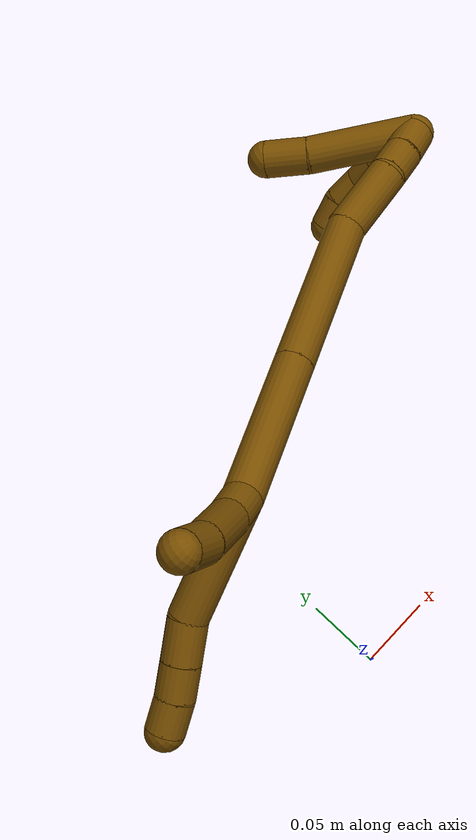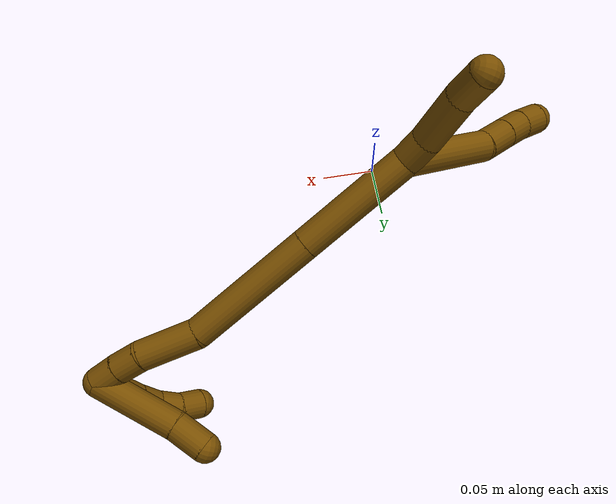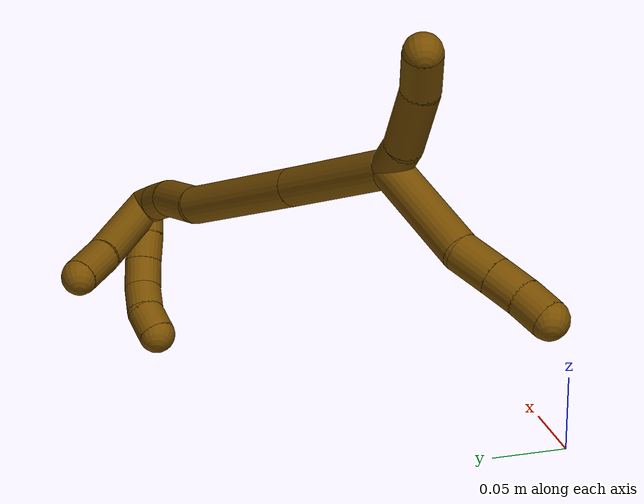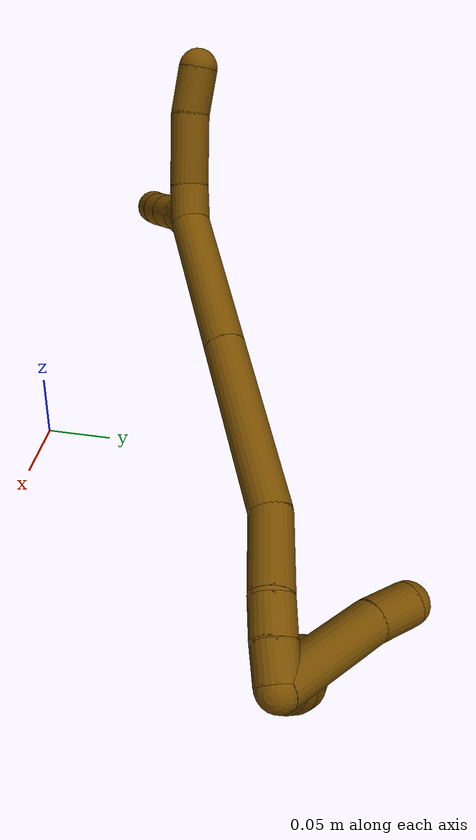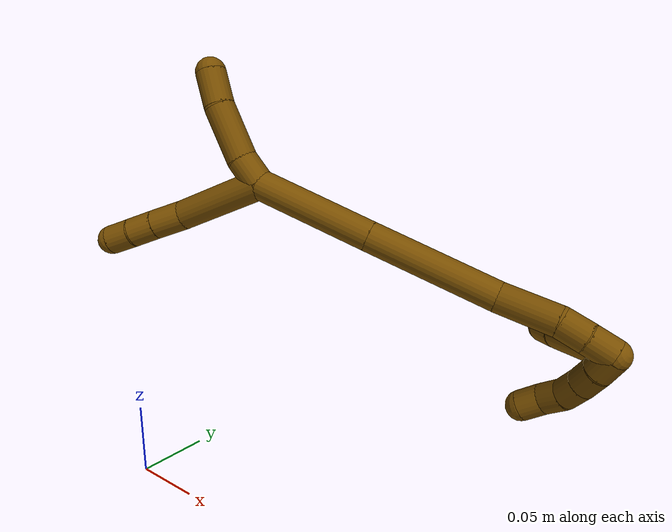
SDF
<sdf version="1.7">
 <world name="default">
  <model name="12">
   <static>0</static>
   <link name="12">
    <collision name="collision-cylinder-e_1_2_8">
     <pose>-0.018758 -0.000157 -0.034801 3.13707 -0.494367 -3.12367</pose>
     <geometry><cylinder><radius>0.0125</radius><length>0.079069</length></cylinder></geometry>
     <surface>
      <friction><ode><mu>1.16</mu><mu2>1.16</mu2><slip1>0</slip1><slip2>0</slip2></ode></friction>
      <contact><ode><kp>1e+06</kp><kd>1</kd><max_vel>0</max_vel><min_depth>0.001</min_depth></ode></contact>
     </surface>
    </collision>
    <visual name="visual-cylinder-e_1_2_8">
     <pose>-0.018758 -0.000157 -0.034801 3.13707 -0.494367 -3.12367</pose>
     <geometry><cylinder><radius>0.0125</radius><length>0.079069</length></cylinder></geometry>
     <material><ambient>0.466667 0.301961 0 1</ambient></material>
    </visual>
    <collision name="collision-cylinder-e_2_8_9">
     <pose>-0.046786 -0.001173 -0.079534 3.05537 -0.749034 -2.92298</pose>
     <geometry><cylinder><radius>0.0125</radius><length>0.027226</length></cylinder></geometry>
     <surface>
      <friction><ode><mu>1.16</mu><mu2>1.16</mu2><slip1>0</slip1><slip2>0</slip2></ode></friction>
      <contact><ode><kp>1e+06</kp><kd>1</kd><max_vel>0</max_vel><min_depth>0.001</min_depth></ode></contact>
     </surface>
    </collision>
    <visual name="visual-cylinder-e_2_8_9">
     <pose>-0.046786 -0.001173 -0.079534 3.05537 -0.749034 -2.92298</pose>
     <geometry><cylinder><radius>0.0125</radius><length>0.027226</length></cylinder></geometry>
     <material><ambient>0.466667 0.301961 0 1</ambient></material>
    </visual>
    <collision name="collision-cylinder-e_3_9_10">
     <pose>-0.063502 -0.00284 -0.097656 3.04323 -0.735458 -2.88744</pose>
     <geometry><cylinder><radius>0.0125</radius><length>0.022197</length></cylinder></geometry>
     <surface>
      <friction><ode><mu>1.16</mu><mu2>1.16</mu2><slip1>0</slip1><slip2>0</slip2></ode></friction>
      <contact><ode><kp>1e+06</kp><kd>1</kd><max_vel>0</max_vel><min_depth>0.001</min_depth></ode></contact>
     </surface>
    </collision>
    <visual name="visual-cylinder-e_3_9_10">
     <pose>-0.063502 -0.00284 -0.097656 3.04323 -0.735458 -2.88744</pose>
     <geometry><cylinder><radius>0.0125</radius><length>0.022197</length></cylinder></geometry>
     <material><ambient>0.466667 0.301961 0 1</ambient></material>
    </visual>
    <collision name="collision-cylinder-e_4_10_6">
     <pose>-0.077317 -0.003847 -0.114509 3.11866 -0.633855 -3.07171</pose>
     <geometry><cylinder><radius>0.0125</radius><length>0.021508</length></cylinder></geometry>
     <surface>
      <friction><ode><mu>1.16</mu><mu2>1.16</mu2><slip1>0</slip1><slip2>0</slip2></ode></friction>
      <contact><ode><kp>1e+06</kp><kd>1</kd><max_vel>0</max_vel><min_depth>0.001</min_depth></ode></contact>
     </surface>
    </collision>
    <visual name="visual-cylinder-e_4_10_6">
     <pose>-0.077317 -0.003847 -0.114509 3.11866 -0.633855 -3.07171</pose>
     <geometry><cylinder><radius>0.0125</radius><length>0.021508</length></cylinder></geometry>
     <material><ambient>0.466667 0.301961 0 1</ambient></material>
    </visual>
    <collision name="collision-cylinder-e_1_2_11">
     <pose>-0.005122 0.010972 -0.001403 -1.69797 -0.433677 0.490456</pose>
     <geometry><cylinder><radius>0.0125</radius><length>0.02438</length></cylinder></geometry>
     <surface>
      <friction><ode><mu>1.16</mu><mu2>1.16</mu2><slip1>0</slip1><slip2>0</slip2></ode></friction>
      <contact><ode><kp>1e+06</kp><kd>1</kd><max_vel>0</max_vel><min_depth>0.001</min_depth></ode></contact>
     </surface>
    </collision>
    <visual name="visual-cylinder-e_1_2_11">
     <pose>-0.005122 0.010972 -0.001403 -1.69797 -0.433677 0.490456</pose>
     <geometry><cylinder><radius>0.0125</radius><length>0.02438</length></cylinder></geometry>
     <material><ambient>0.466667 0.301961 0 1</ambient></material>
    </visual>
    <collision name="collision-cylinder-e_2_11_12">
     <pose>-0.017343 0.04394 -0.001095 -1.49317 -0.311295 0.288356</pose>
     <geometry><cylinder><radius>0.0125</radius><length>0.046351</length></cylinder></geometry>
     <surface>
      <friction><ode><mu>1.16</mu><mu2>1.16</mu2><slip1>0</slip1><slip2>0</slip2></ode></friction>
      <contact><ode><kp>1e+06</kp><kd>1</kd><max_vel>0</max_vel><min_depth>0.001</min_depth></ode></contact>
     </surface>
    </collision>
    <visual name="visual-cylinder-e_2_11_12">
     <pose>-0.017343 0.04394 -0.001095 -1.49317 -0.311295 0.288356</pose>
     <geometry><cylinder><radius>0.0125</radius><length>0.046351</length></cylinder></geometry>
     <material><ambient>0.466667 0.301961 0 1</ambient></material>
    </visual>
    <collision name="collision-cylinder-e_3_12_5">
     <pose>-0.026392 0.080392 0.001781 -1.49036 -0.133645 0.123332</pose>
     <geometry><cylinder><radius>0.0125</radius><length>0.029268</length></cylinder></geometry>
     <surface>
      <friction><ode><mu>1.16</mu><mu2>1.16</mu2><slip1>0</slip1><slip2>0</slip2></ode></friction>
      <contact><ode><kp>1e+06</kp><kd>1</kd><max_vel>0</max_vel><min_depth>0.001</min_depth></ode></contact>
     </surface>
    </collision>
    <visual name="visual-cylinder-e_3_12_5">
     <pose>-0.026392 0.080392 0.001781 -1.49036 -0.133645 0.123332</pose>
     <geometry><cylinder><radius>0.0125</radius><length>0.029268</length></cylinder></geometry>
     <material><ambient>0.466667 0.301961 0 1</ambient></material>
    </visual>
    <collision name="collision-cylinder-e_1_2_13">
     <pose>0.031836 -0.029927 0.022113 0.934444 0.707718 0.368488</pose>
     <geometry><cylinder><radius>0.0125</radius><length>0.097942</length></cylinder></geometry>
     <surface>
      <friction><ode><mu>1.16</mu><mu2>1.16</mu2><slip1>0</slip1><slip2>0</slip2></ode></friction>
      <contact><ode><kp>1e+06</kp><kd>1</kd><max_vel>0</max_vel><min_depth>0.001</min_depth></ode></contact>
     </surface>
    </collision>
    <visual name="visual-cylinder-e_1_2_13">
     <pose>0.031836 -0.029927 0.022113 0.934444 0.707718 0.368488</pose>
     <geometry><cylinder><radius>0.0125</radius><length>0.097942</length></cylinder></geometry>
     <material><ambient>0.466667 0.301961 0 1</ambient></material>
    </visual>
    <collision name="collision-cylinder-e_2_13_14">
     <pose>0.099283 -0.093119 0.069127 0.92821 0.708549 0.366157</pose>
     <geometry><cylinder><radius>0.0125</radius><length>0.109446</length></cylinder></geometry>
     <surface>
      <friction><ode><mu>1.16</mu><mu2>1.16</mu2><slip1>0</slip1><slip2>0</slip2></ode></friction>
      <contact><ode><kp>1e+06</kp><kd>1</kd><max_vel>0</max_vel><min_depth>0.001</min_depth></ode></contact>
     </surface>
    </collision>
    <visual name="visual-cylinder-e_2_13_14">
     <pose>0.099283 -0.093119 0.069127 0.92821 0.708549 0.366157</pose>
     <geometry><cylinder><radius>0.0125</radius><length>0.109446</length></cylinder></geometry>
     <material><ambient>0.466667 0.301961 0 1</ambient></material>
    </visual>
    <collision name="collision-cylinder-e_3_14_15">
     <pose>0.145646 -0.140888 0.110587 0.719357 0.454383 0.17343</pose>
     <geometry><cylinder><radius>0.0125</radius><length>0.049</length></cylinder></geometry>
     <surface>
      <friction><ode><mu>1.16</mu><mu2>1.16</mu2><slip1>0</slip1><slip2>0</slip2></ode></friction>
      <contact><ode><kp>1e+06</kp><kd>1</kd><max_vel>0</max_vel><min_depth>0.001</min_depth></ode></contact>
     </surface>
    </collision>
    <visual name="visual-cylinder-e_3_14_15">
     <pose>0.145646 -0.140888 0.110587 0.719357 0.454383 0.17343</pose>
     <geometry><cylinder><radius>0.0125</radius><length>0.049</length></cylinder></geometry>
     <material><ambient>0.466667 0.301961 0 1</ambient></material>
    </visual>
    <collision name="collision-cylinder-e_4_15_16">
     <pose>0.161691 -0.163277 0.132775 0.950731 0.499951 0.261342</pose>
     <geometry><cylinder><radius>0.0125</radius><length>0.022077</length></cylinder></geometry>
     <surface>
      <friction><ode><mu>1.16</mu><mu2>1.16</mu2><slip1>0</slip1><slip2>0</slip2></ode></friction>
      <contact><ode><kp>1e+06</kp><kd>1</kd><max_vel>0</max_vel><min_depth>0.001</min_depth></ode></contact>
     </surface>
    </collision>
    <visual name="visual-cylinder-e_4_15_16">
     <pose>0.161691 -0.163277 0.132775 0.950731 0.499951 0.261342</pose>
     <geometry><cylinder><radius>0.0125</radius><length>0.022077</length></cylinder></geometry>
     <material><ambient>0.466667 0.301961 0 1</ambient></material>
    </visual>
    <collision name="collision-cylinder-e_5_16_1">
     <pose>0.172684 -0.178883 0.143284 1.00728 0.558019 0.313141</pose>
     <geometry><cylinder><radius>0.0125</radius><length>0.021535</length></cylinder></geometry>
     <surface>
      <friction><ode><mu>1.16</mu><mu2>1.16</mu2><slip1>0</slip1><slip2>0</slip2></ode></friction>
      <contact><ode><kp>1e+06</kp><kd>1</kd><max_vel>0</max_vel><min_depth>0.001</min_depth></ode></contact>
     </surface>
    </collision>
    <visual name="visual-cylinder-e_5_16_1">
     <pose>0.172684 -0.178883 0.143284 1.00728 0.558019 0.313141</pose>
     <geometry><cylinder><radius>0.0125</radius><length>0.021535</length></cylinder></geometry>
     <material><ambient>0.466667 0.301961 0 1</ambient></material>
    </visual>
    <collision name="collision-cylinder-e_1_1_17">
     <pose>0.178992 -0.190876 0.139141 2.6994 0.060713 0.26857</pose>
     <geometry><cylinder><radius>0.0125</radius><length>0.02</length></cylinder></geometry>
     <surface>
      <friction><ode><mu>1.16</mu><mu2>1.16</mu2><slip1>0</slip1><slip2>0</slip2></ode></friction>
      <contact><ode><kp>1e+06</kp><kd>1</kd><max_vel>0</max_vel><min_depth>0.001</min_depth></ode></contact>
     </surface>
    </collision>
    <visual name="visual-cylinder-e_1_1_17">
     <pose>0.178992 -0.190876 0.139141 2.6994 0.060713 0.26857</pose>
     <geometry><cylinder><radius>0.0125</radius><length>0.02</length></cylinder></geometry>
     <material><ambient>0.466667 0.301961 0 1</ambient></material>
    </visual>
    <collision name="collision-cylinder-e_2_17_18">
     <pose>0.181003 -0.198602 0.120841 2.78513 0.140915 0.746786</pose>
     <geometry><cylinder><radius>0.0125</radius><length>0.02</length></cylinder></geometry>
     <surface>
      <friction><ode><mu>1.16</mu><mu2>1.16</mu2><slip1>0</slip1><slip2>0</slip2></ode></friction>
      <contact><ode><kp>1e+06</kp><kd>1</kd><max_vel>0</max_vel><min_depth>0.001</min_depth></ode></contact>
     </surface>
    </collision>
    <visual name="visual-cylinder-e_2_17_18">
     <pose>0.181003 -0.198602 0.120841 2.78513 0.140915 0.746786</pose>
     <geometry><cylinder><radius>0.0125</radius><length>0.02</length></cylinder></geometry>
     <material><ambient>0.466667 0.301961 0 1</ambient></material>
    </visual>
    <collision name="collision-cylinder-e_3_18_19">
     <pose>0.183119 -0.204881 0.101996 2.85454 0.071217 0.483346</pose>
     <geometry><cylinder><radius>0.0125</radius><length>0.02</length></cylinder></geometry>
     <surface>
      <friction><ode><mu>1.16</mu><mu2>1.16</mu2><slip1>0</slip1><slip2>0</slip2></ode></friction>
      <contact><ode><kp>1e+06</kp><kd>1</kd><max_vel>0</max_vel><min_depth>0.001</min_depth></ode></contact>
     </surface>
    </collision>
    <visual name="visual-cylinder-e_3_18_19">
     <pose>0.183119 -0.204881 0.101996 2.85454 0.071217 0.483346</pose>
     <geometry><cylinder><radius>0.0125</radius><length>0.02</length></cylinder></geometry>
     <material><ambient>0.466667 0.301961 0 1</ambient></material>
    </visual>
    <collision name="collision-cylinder-e_4_19_20">
     <pose>0.183014 -0.208023 0.082468 3.10974 -0.081822 -2.39936</pose>
     <geometry><cylinder><radius>0.0125</radius><length>0.02</length></cylinder></geometry>
     <surface>
      <friction><ode><mu>1.16</mu><mu2>1.16</mu2><slip1>0</slip1><slip2>0</slip2></ode></friction>
      <contact><ode><kp>1e+06</kp><kd>1</kd><max_vel>0</max_vel><min_depth>0.001</min_depth></ode></contact>
     </surface>
    </collision>
    <visual name="visual-cylinder-e_4_19_20">
     <pose>0.183014 -0.208023 0.082468 3.10974 -0.081822 -2.39936</pose>
     <geometry><cylinder><radius>0.0125</radius><length>0.02</length></cylinder></geometry>
     <material><ambient>0.466667 0.301961 0 1</ambient></material>
    </visual>
    <collision name="collision-cylinder-e_5_20_4">
     <pose>0.178514 -0.209371 0.063267 3.03049 -0.377051 -2.57437</pose>
     <geometry><cylinder><radius>0.0125</radius><length>0.02</length></cylinder></geometry>
     <surface>
      <friction><ode><mu>1.16</mu><mu2>1.16</mu2><slip1>0</slip1><slip2>0</slip2></ode></friction>
      <contact><ode><kp>1e+06</kp><kd>1</kd><max_vel>0</max_vel><min_depth>0.001</min_depth></ode></contact>
     </surface>
    </collision>
    <visual name="visual-cylinder-e_5_20_4">
     <pose>0.178514 -0.209371 0.063267 3.03049 -0.377051 -2.57437</pose>
     <geometry><cylinder><radius>0.0125</radius><length>0.02</length></cylinder></geometry>
     <material><ambient>0.466667 0.301961 0 1</ambient></material>
    </visual>
    <collision name="collision-cylinder-e_1_1_21">
     <pose>0.191017 -0.17342 0.117609 -2.73421 0.362797 -1.45226</pose>
     <geometry><cylinder><radius>0.0125</radius><length>0.071188</length></cylinder></geometry>
     <surface>
      <friction><ode><mu>1.16</mu><mu2>1.16</mu2><slip1>0</slip1><slip2>0</slip2></ode></friction>
      <contact><ode><kp>1e+06</kp><kd>1</kd><max_vel>0</max_vel><min_depth>0.001</min_depth></ode></contact>
     </surface>
    </collision>
    <visual name="visual-cylinder-e_1_1_21">
     <pose>0.191017 -0.17342 0.117609 -2.73421 0.362797 -1.45226</pose>
     <geometry><cylinder><radius>0.0125</radius><length>0.071188</length></cylinder></geometry>
     <material><ambient>0.466667 0.301961 0 1</ambient></material>
    </visual>
    <collision name="collision-cylinder-e_2_21_3">
     <pose>0.210413 -0.155455 0.075269 -2.75627 0.488775 -1.8139</pose>
     <geometry><cylinder><radius>0.0125</radius><length>0.028812</length></cylinder></geometry>
     <surface>
      <friction><ode><mu>1.16</mu><mu2>1.16</mu2><slip1>0</slip1><slip2>0</slip2></ode></friction>
      <contact><ode><kp>1e+06</kp><kd>1</kd><max_vel>0</max_vel><min_depth>0.001</min_depth></ode></contact>
     </surface>
    </collision>
    <visual name="visual-cylinder-e_2_21_3">
     <pose>0.210413 -0.155455 0.075269 -2.75627 0.488775 -1.8139</pose>
     <geometry><cylinder><radius>0.0125</radius><length>0.028812</length></cylinder></geometry>
     <material><ambient>0.466667 0.301961 0 1</ambient></material>
    </visual>
    <collision name="collision-sphere-3">
     <pose>0.217178 -0.150674 0.063482 0 -0 0</pose>
     <geometry><sphere><radius>0.0125</radius></sphere></geometry>
     <surface>
      <friction><ode><mu>1.16</mu><mu2>1.16</mu2><slip1>0</slip1><slip2>0</slip2></ode></friction>
      <contact><ode><kp>1e+06</kp><kd>1</kd><max_vel>0</max_vel><min_depth>0.001</min_depth></ode></contact>
     </surface>
    </collision>
    <visual name="visual-sphere-3">
     <pose>0.217178 -0.150674 0.063482 0 -0 0</pose>
     <geometry><sphere><radius>0.0125</radius></sphere></geometry>
     <material><ambient>0.466667 0.301961 0 1</ambient></material>
    </visual>
    <collision name="collision-sphere-21">
     <pose>0.203649 -0.160235 0.087055 0 -0 0</pose>
     <geometry><sphere><radius>0.0125</radius></sphere></geometry>
     <surface>
      <friction><ode><mu>1.16</mu><mu2>1.16</mu2><slip1>0</slip1><slip2>0</slip2></ode></friction>
      <contact><ode><kp>1e+06</kp><kd>1</kd><max_vel>0</max_vel><min_depth>0.001</min_depth></ode></contact>
     </surface>
    </collision>
    <visual name="visual-sphere-21">
     <pose>0.203649 -0.160235 0.087055 0 -0 0</pose>
     <geometry><sphere><radius>0.0125</radius></sphere></geometry>
     <material><ambient>0.466667 0.301961 0 1</ambient></material>
    </visual>
    <collision name="collision-sphere-4">
     <pose>0.174833 -0.210402 0.054026 0 -0 0</pose>
     <geometry><sphere><radius>0.0125</radius></sphere></geometry>
     <surface>
      <friction><ode><mu>1.16</mu><mu2>1.16</mu2><slip1>0</slip1><slip2>0</slip2></ode></friction>
      <contact><ode><kp>1e+06</kp><kd>1</kd><max_vel>0</max_vel><min_depth>0.001</min_depth></ode></contact>
     </surface>
    </collision>
    <visual name="visual-sphere-4">
     <pose>0.174833 -0.210402 0.054026 0 -0 0</pose>
     <geometry><sphere><radius>0.0125</radius></sphere></geometry>
     <material><ambient>0.466667 0.301961 0 1</ambient></material>
    </visual>
    <collision name="collision-sphere-20">
     <pose>0.182196 -0.20834 0.072507 0 -0 0</pose>
     <geometry><sphere><radius>0.0125</radius></sphere></geometry>
     <surface>
      <friction><ode><mu>1.16</mu><mu2>1.16</mu2><slip1>0</slip1><slip2>0</slip2></ode></friction>
      <contact><ode><kp>1e+06</kp><kd>1</kd><max_vel>0</max_vel><min_depth>0.001</min_depth></ode></contact>
     </surface>
    </collision>
    <visual name="visual-sphere-20">
     <pose>0.182196 -0.20834 0.072507 0 -0 0</pose>
     <geometry><sphere><radius>0.0125</radius></sphere></geometry>
     <material><ambient>0.466667 0.301961 0 1</ambient></material>
    </visual>
    <collision name="collision-sphere-11">
     <pose>-0.010245 0.021945 -0.002806 0 -0 0</pose>
     <geometry><sphere><radius>0.0125</radius></sphere></geometry>
     <surface>
      <friction><ode><mu>1.16</mu><mu2>1.16</mu2><slip1>0</slip1><slip2>0</slip2></ode></friction>
      <contact><ode><kp>1e+06</kp><kd>1</kd><max_vel>0</max_vel><min_depth>0.001</min_depth></ode></contact>
     </surface>
    </collision>
    <visual name="visual-sphere-11">
     <pose>-0.010245 0.021945 -0.002806 0 -0 0</pose>
     <geometry><sphere><radius>0.0125</radius></sphere></geometry>
     <material><ambient>0.466667 0.301961 0 1</ambient></material>
    </visual>
    <collision name="collision-sphere-6">
     <pose>-0.083686 -0.004046 -0.123172 0 -0 0</pose>
     <geometry><sphere><radius>0.0125</radius></sphere></geometry>
     <surface>
      <friction><ode><mu>1.16</mu><mu2>1.16</mu2><slip1>0</slip1><slip2>0</slip2></ode></friction>
      <contact><ode><kp>1e+06</kp><kd>1</kd><max_vel>0</max_vel><min_depth>0.001</min_depth></ode></contact>
     </surface>
    </collision>
    <visual name="visual-sphere-6">
     <pose>-0.083686 -0.004046 -0.123172 0 -0 0</pose>
     <geometry><sphere><radius>0.0125</radius></sphere></geometry>
     <material><ambient>0.466667 0.301961 0 1</ambient></material>
    </visual>
    <collision name="collision-sphere-10">
     <pose>-0.070948 -0.003648 -0.105846 0 -0 0</pose>
     <geometry><sphere><radius>0.0125</radius></sphere></geometry>
     <surface>
      <friction><ode><mu>1.16</mu><mu2>1.16</mu2><slip1>0</slip1><slip2>0</slip2></ode></friction>
      <contact><ode><kp>1e+06</kp><kd>1</kd><max_vel>0</max_vel><min_depth>0.001</min_depth></ode></contact>
     </surface>
    </collision>
    <visual name="visual-sphere-10">
     <pose>-0.070948 -0.003648 -0.105846 0 -0 0</pose>
     <geometry><sphere><radius>0.0125</radius></sphere></geometry>
     <material><ambient>0.466667 0.301961 0 1</ambient></material>
    </visual>
    <collision name="collision-sphere-9">
     <pose>-0.056055 -0.002032 -0.089466 0 -0 0</pose>
     <geometry><sphere><radius>0.0125</radius></sphere></geometry>
     <surface>
      <friction><ode><mu>1.16</mu><mu2>1.16</mu2><slip1>0</slip1><slip2>0</slip2></ode></friction>
      <contact><ode><kp>1e+06</kp><kd>1</kd><max_vel>0</max_vel><min_depth>0.001</min_depth></ode></contact>
     </surface>
    </collision>
    <visual name="visual-sphere-9">
     <pose>-0.056055 -0.002032 -0.089466 0 -0 0</pose>
     <geometry><sphere><radius>0.0125</radius></sphere></geometry>
     <material><ambient>0.466667 0.301961 0 1</ambient></material>
    </visual>
    <collision name="collision-sphere-2">
     <geometry><sphere><radius>0.0125</radius></sphere></geometry>
     <surface>
      <friction><ode><mu>1.16</mu><mu2>1.16</mu2><slip1>0</slip1><slip2>0</slip2></ode></friction>
      <contact><ode><kp>1e+06</kp><kd>1</kd><max_vel>0</max_vel><min_depth>0.001</min_depth></ode></contact>
     </surface>
    </collision>
    <visual name="visual-sphere-2">
     <geometry><sphere><radius>0.0125</radius></sphere></geometry>
     <material><ambient>0.466667 0.301961 0 1</ambient></material>
    </visual>
    <collision name="collision-sphere-19">
     <pose>0.183831 -0.207705 0.09243 0 -0 0</pose>
     <geometry><sphere><radius>0.0125</radius></sphere></geometry>
     <surface>
      <friction><ode><mu>1.16</mu><mu2>1.16</mu2><slip1>0</slip1><slip2>0</slip2></ode></friction>
      <contact><ode><kp>1e+06</kp><kd>1</kd><max_vel>0</max_vel><min_depth>0.001</min_depth></ode></contact>
     </surface>
    </collision>
    <visual name="visual-sphere-19">
     <pose>0.183831 -0.207705 0.09243 0 -0 0</pose>
     <geometry><sphere><radius>0.0125</radius></sphere></geometry>
     <material><ambient>0.466667 0.301961 0 1</ambient></material>
    </visual>
    <collision name="collision-sphere-8">
     <pose>-0.037516 -0.000315 -0.069601 0 -0 0</pose>
     <geometry><sphere><radius>0.0125</radius></sphere></geometry>
     <surface>
      <friction><ode><mu>1.16</mu><mu2>1.16</mu2><slip1>0</slip1><slip2>0</slip2></ode></friction>
      <contact><ode><kp>1e+06</kp><kd>1</kd><max_vel>0</max_vel><min_depth>0.001</min_depth></ode></contact>
     </surface>
    </collision>
    <visual name="visual-sphere-8">
     <pose>-0.037516 -0.000315 -0.069601 0 -0 0</pose>
     <geometry><sphere><radius>0.0125</radius></sphere></geometry>
     <material><ambient>0.466667 0.301961 0 1</ambient></material>
    </visual>
    <collision name="collision-sphere-12">
     <pose>-0.024442 0.065935 0.000616 0 -0 0</pose>
     <geometry><sphere><radius>0.0125</radius></sphere></geometry>
     <surface>
      <friction><ode><mu>1.16</mu><mu2>1.16</mu2><slip1>0</slip1><slip2>0</slip2></ode></friction>
      <contact><ode><kp>1e+06</kp><kd>1</kd><max_vel>0</max_vel><min_depth>0.001</min_depth></ode></contact>
     </surface>
    </collision>
    <visual name="visual-sphere-12">
     <pose>-0.024442 0.065935 0.000616 0 -0 0</pose>
     <geometry><sphere><radius>0.0125</radius></sphere></geometry>
     <material><ambient>0.466667 0.301961 0 1</ambient></material>
    </visual>
    <collision name="collision-sphere-5">
     <pose>-0.028342 0.094849 0.002947 0 -0 0</pose>
     <geometry><sphere><radius>0.0125</radius></sphere></geometry>
     <surface>
      <friction><ode><mu>1.16</mu><mu2>1.16</mu2><slip1>0</slip1><slip2>0</slip2></ode></friction>
      <contact><ode><kp>1e+06</kp><kd>1</kd><max_vel>0</max_vel><min_depth>0.001</min_depth></ode></contact>
     </surface>
    </collision>
    <visual name="visual-sphere-5">
     <pose>-0.028342 0.094849 0.002947 0 -0 0</pose>
     <geometry><sphere><radius>0.0125</radius></sphere></geometry>
     <material><ambient>0.466667 0.301961 0 1</ambient></material>
    </visual>
    <collision name="collision-sphere-13">
     <pose>0.063672 -0.059855 0.044226 0 -0 0</pose>
     <geometry><sphere><radius>0.0125</radius></sphere></geometry>
     <surface>
      <friction><ode><mu>1.16</mu><mu2>1.16</mu2><slip1>0</slip1><slip2>0</slip2></ode></friction>
      <contact><ode><kp>1e+06</kp><kd>1</kd><max_vel>0</max_vel><min_depth>0.001</min_depth></ode></contact>
     </surface>
    </collision>
    <visual name="visual-sphere-13">
     <pose>0.063672 -0.059855 0.044226 0 -0 0</pose>
     <geometry><sphere><radius>0.0125</radius></sphere></geometry>
     <material><ambient>0.466667 0.301961 0 1</ambient></material>
    </visual>
    <collision name="collision-sphere-14">
     <pose>0.134893 -0.126383 0.094027 0 -0 0</pose>
     <geometry><sphere><radius>0.0125</radius></sphere></geometry>
     <surface>
      <friction><ode><mu>1.16</mu><mu2>1.16</mu2><slip1>0</slip1><slip2>0</slip2></ode></friction>
      <contact><ode><kp>1e+06</kp><kd>1</kd><max_vel>0</max_vel><min_depth>0.001</min_depth></ode></contact>
     </surface>
    </collision>
    <visual name="visual-sphere-14">
     <pose>0.134893 -0.126383 0.094027 0 -0 0</pose>
     <geometry><sphere><radius>0.0125</radius></sphere></geometry>
     <material><ambient>0.466667 0.301961 0 1</ambient></material>
    </visual>
    <collision name="collision-sphere-15">
     <pose>0.156399 -0.155393 0.127146 0 -0 0</pose>
     <geometry><sphere><radius>0.0125</radius></sphere></geometry>
     <surface>
      <friction><ode><mu>1.16</mu><mu2>1.16</mu2><slip1>0</slip1><slip2>0</slip2></ode></friction>
      <contact><ode><kp>1e+06</kp><kd>1</kd><max_vel>0</max_vel><min_depth>0.001</min_depth></ode></contact>
     </surface>
    </collision>
    <visual name="visual-sphere-15">
     <pose>0.156399 -0.155393 0.127146 0 -0 0</pose>
     <geometry><sphere><radius>0.0125</radius></sphere></geometry>
     <material><ambient>0.466667 0.301961 0 1</ambient></material>
    </visual>
    <collision name="collision-sphere-16">
     <pose>0.166982 -0.171161 0.138405 0 -0 0</pose>
     <geometry><sphere><radius>0.0125</radius></sphere></geometry>
     <surface>
      <friction><ode><mu>1.16</mu><mu2>1.16</mu2><slip1>0</slip1><slip2>0</slip2></ode></friction>
      <contact><ode><kp>1e+06</kp><kd>1</kd><max_vel>0</max_vel><min_depth>0.001</min_depth></ode></contact>
     </surface>
    </collision>
    <visual name="visual-sphere-16">
     <pose>0.166982 -0.171161 0.138405 0 -0 0</pose>
     <geometry><sphere><radius>0.0125</radius></sphere></geometry>
     <material><ambient>0.466667 0.301961 0 1</ambient></material>
    </visual>
    <collision name="collision-sphere-1">
     <pose>0.178385 -0.186604 0.148163 0 -0 0</pose>
     <geometry><sphere><radius>0.0125</radius></sphere></geometry>
     <surface>
      <friction><ode><mu>1.16</mu><mu2>1.16</mu2><slip1>0</slip1><slip2>0</slip2></ode></friction>
      <contact><ode><kp>1e+06</kp><kd>1</kd><max_vel>0</max_vel><min_depth>0.001</min_depth></ode></contact>
     </surface>
    </collision>
    <visual name="visual-sphere-1">
     <pose>0.178385 -0.186604 0.148163 0 -0 0</pose>
     <geometry><sphere><radius>0.0125</radius></sphere></geometry>
     <material><ambient>0.466667 0.301961 0 1</ambient></material>
    </visual>
    <collision name="collision-sphere-18">
     <pose>0.182408 -0.202057 0.111563 0 -0 0</pose>
     <geometry><sphere><radius>0.0125</radius></sphere></geometry>
     <surface>
      <friction><ode><mu>1.16</mu><mu2>1.16</mu2><slip1>0</slip1><slip2>0</slip2></ode></friction>
      <contact><ode><kp>1e+06</kp><kd>1</kd><max_vel>0</max_vel><min_depth>0.001</min_depth></ode></contact>
     </surface>
    </collision>
    <visual name="visual-sphere-18">
     <pose>0.182408 -0.202057 0.111563 0 -0 0</pose>
     <geometry><sphere><radius>0.0125</radius></sphere></geometry>
     <material><ambient>0.466667 0.301961 0 1</ambient></material>
    </visual>
    <collision name="collision-sphere-17">
     <pose>0.179599 -0.195147 0.13012 0 -0 0</pose>
     <geometry><sphere><radius>0.0125</radius></sphere></geometry>
     <surface>
      <friction><ode><mu>1.16</mu><mu2>1.16</mu2><slip1>0</slip1><slip2>0</slip2></ode></friction>
      <contact><ode><kp>1e+06</kp><kd>1</kd><max_vel>0</max_vel><min_depth>0.001</min_depth></ode></contact>
     </surface>
    </collision>
    <visual name="visual-sphere-17">
     <pose>0.179599 -0.195147 0.13012 0 -0 0</pose>
     <geometry><sphere><radius>0.0125</radius></sphere></geometry>
     <material><ambient>0.466667 0.301961 0 1</ambient></material>
    </visual>
    <inertial>
     <pose>0.078176 -0.080101 0.043042 0 -0 0</pose>
     <mass>0.75</mass>
     <inertia>
      <ixx>0.000161</ixx>
      <ixy>0</ixy>
      <ixz>0</ixz>
      <iyy>0.00023</iyy>
      <iyz>0</iyz>
      <izz>-2.6e-05</izz>
     </inertia>
    </inertial>
   </link>
   <pose>0.008302 0.118486 0.200789 1.05966 0.123376 1.27421</pose>
  </model>
 </world>
</sdf>
